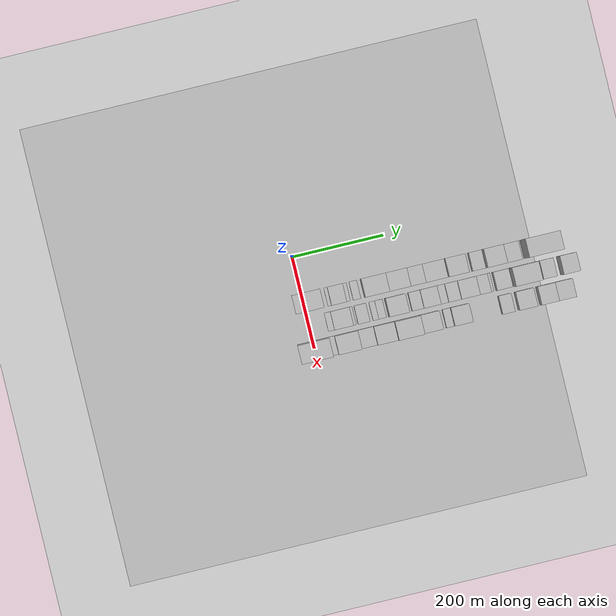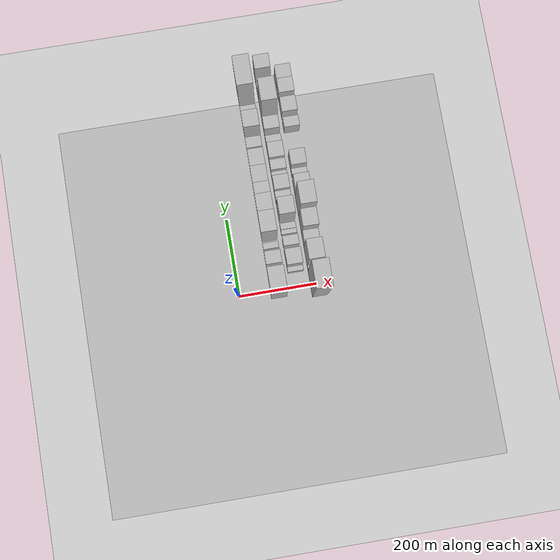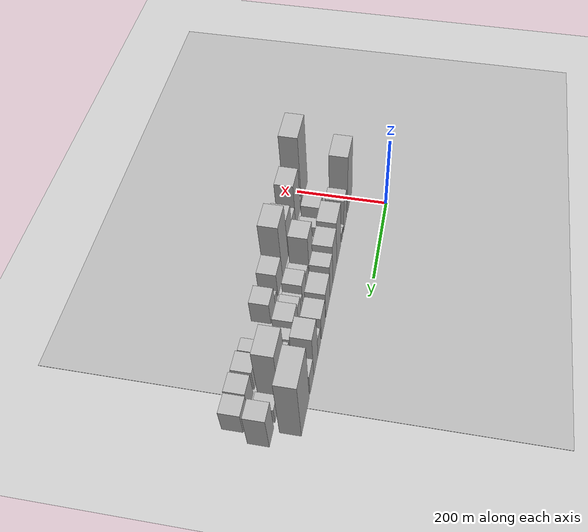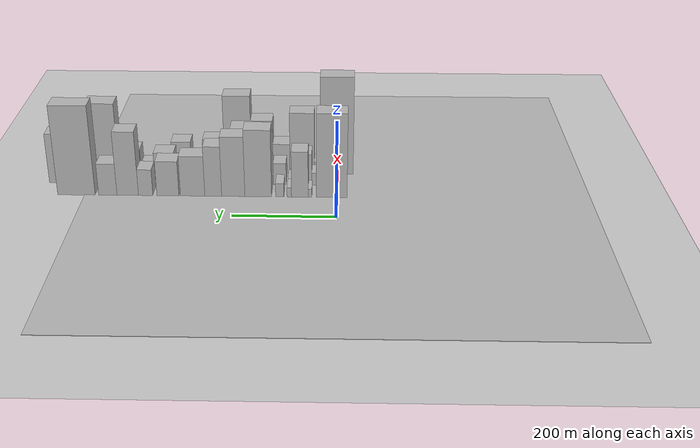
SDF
<sdf version="1.6">
 <world name="default">
  <include><name>ground_plane_1</name><uri>model://HANNAS_ground_plane</uri></include>
  <include>
   <name>ground_plane_2</name>
   <uri>model://HANNAS_ground_plane</uri>
   <pose>100 0 0  0 0 0</pose>
  </include>
  <model name="building_17">
   <static>1</static>
   <pose>100.0000 10.0317 0 0.000000 0.000000 0.000000</pose>
   <link name="link">
    <pose>0 0 90.00 0 0 0</pose>
    <collision name="collision"><geometry><box><size>40.0000 60.5755 180.0000</size></box></geometry></collision>
    <visual name="visual">
     <cast_shadows>0</cast_shadows>
     <geometry><box><size>40.0000 60.5755 180.0000</size></box></geometry>
     <material>
      <script>
       <uri>model://HANNAS_wall/materials/scripts</uri>
       <uri>model://HANNAS_wall/materials/textures</uri>
       <name>vrc/HANNAS_wall</name>
      </script>
     </material>
    </visual>
   </link>
  </model>
  <model name="building_18">
   <static>1</static>
   <pose>100.0000 53.0055 0 0.000000 0.000000 0.000000</pose>
   <link name="link">
    <pose>0 0 9.00 0 0 0</pose>
    <collision name="collision"><geometry><box><size>40.0000 7.3721 18.0000</size></box></geometry></collision>
    <visual name="visual">
     <cast_shadows>0</cast_shadows>
     <geometry><box><size>40.0000 7.3721 18.0000</size></box></geometry>
     <material>
      <script>
       <uri>model://HANNAS_wall/materials/scripts</uri>
       <uri>model://HANNAS_wall/materials/textures</uri>
       <name>vrc/HANNAS_wall</name>
      </script>
     </material>
    </visual>
   </link>
  </model>
  <model name="building_19">
   <static>1</static>
   <pose>100.0000 73.1179 0 0.000000 0.000000 0.000000</pose>
   <link name="link">
    <pose>0 0 49.50 0 0 0</pose>
    <collision name="collision"><geometry><box><size>40.0000 32.8527 99.0000</size></box></geometry></collision>
    <visual name="visual">
     <cast_shadows>0</cast_shadows>
     <geometry><box><size>40.0000 32.8527 99.0000</size></box></geometry>
     <material>
      <script>
       <uri>model://HANNAS_wall/materials/scripts</uri>
       <uri>model://HANNAS_wall/materials/textures</uri>
       <name>vrc/HANNAS_wall</name>
      </script>
     </material>
    </visual>
   </link>
  </model>
  <model name="building_20">
   <static>1</static>
   <pose>100.0000 93.9917 0 0.000000 0.000000 0.000000</pose>
   <link name="link">
    <pose>0 0 10.50 0 0 0</pose>
    <collision name="collision"><geometry><box><size>40.0000 8.8949 21.0000</size></box></geometry></collision>
    <visual name="visual">
     <cast_shadows>0</cast_shadows>
     <geometry><box><size>40.0000 8.8949 21.0000</size></box></geometry>
     <material>
      <script>
       <uri>model://HANNAS_wall/materials/scripts</uri>
       <uri>model://HANNAS_wall/materials/textures</uri>
       <name>vrc/HANNAS_wall</name>
      </script>
     </material>
    </visual>
   </link>
  </model>
  <model name="building_21">
   <static>1</static>
   <pose>100.0000 112.7230 0 0.000000 0.000000 0.000000</pose>
   <link name="link">
    <pose>0 0 15.00 0 0 0</pose>
    <collision name="collision"><geometry><box><size>40.0000 16.5676 30.0000</size></box></geometry></collision>
    <visual name="visual">
     <cast_shadows>0</cast_shadows>
     <geometry><box><size>40.0000 16.5676 30.0000</size></box></geometry>
     <material>
      <script>
       <uri>model://HANNAS_wall/materials/scripts</uri>
       <uri>model://HANNAS_wall/materials/textures</uri>
       <name>vrc/HANNAS_wall</name>
      </script>
     </material>
    </visual>
   </link>
  </model>
  <model name="building_22">
   <static>1</static>
   <pose>100.0000 155.3587 0 0.000000 0.000000 0.000000</pose>
   <link name="link">
    <pose>0 0 72.00 0 0 0</pose>
    <collision name="collision"><geometry><box><size>40.0000 52.7038 144.0000</size></box></geometry></collision>
    <visual name="visual">
     <cast_shadows>0</cast_shadows>
     <geometry><box><size>40.0000 52.7038 144.0000</size></box></geometry>
     <material>
      <script>
       <uri>model://HANNAS_wall/materials/scripts</uri>
       <uri>model://HANNAS_wall/materials/textures</uri>
       <name>vrc/HANNAS_wall</name>
      </script>
     </material>
    </visual>
   </link>
  </model>
  <model name="building_23">
   <static>1</static>
   <pose>100.0000 204.7117 0 0.000000 0.000000 0.000000</pose>
   <link name="link">
    <pose>0 0 64.50 0 0 0</pose>
    <collision name="collision"><geometry><box><size>40.0000 46.0022 129.0000</size></box></geometry></collision>
    <visual name="visual">
     <cast_shadows>0</cast_shadows>
     <geometry><box><size>40.0000 46.0022 129.0000</size></box></geometry>
     <material>
      <script>
       <uri>model://HANNAS_wall/materials/scripts</uri>
       <uri>model://HANNAS_wall/materials/textures</uri>
       <name>vrc/HANNAS_wall</name>
      </script>
     </material>
    </visual>
   </link>
  </model>
  <model name="building_24">
   <static>1</static>
   <pose>100.0000 244.3947 0 0.000000 0.000000 0.000000</pose>
   <link name="link">
    <pose>0 0 54.00 0 0 0</pose>
    <collision name="collision"><geometry><box><size>40.0000 33.3637 108.0000</size></box></geometry></collision>
    <visual name="visual">
     <cast_shadows>0</cast_shadows>
     <geometry><box><size>40.0000 33.3637 108.0000</size></box></geometry>
     <material>
      <script>
       <uri>model://HANNAS_wall/materials/scripts</uri>
       <uri>model://HANNAS_wall/materials/textures</uri>
       <name>vrc/HANNAS_wall</name>
      </script>
     </material>
    </visual>
   </link>
  </model>
  <model name="building_25">
   <static>1</static>
   <pose>100.0000 285.2390 0 0.000000 0.000000 0.000000</pose>
   <link name="link">
    <pose>0 0 43.50 0 0 0</pose>
    <collision name="collision"><geometry><box><size>40.0000 48.3250 87.0000</size></box></geometry></collision>
    <visual name="visual">
     <cast_shadows>0</cast_shadows>
     <geometry><box><size>40.0000 48.3250 87.0000</size></box></geometry>
     <material>
      <script>
       <uri>model://HANNAS_wall/materials/scripts</uri>
       <uri>model://HANNAS_wall/materials/textures</uri>
       <name>vrc/HANNAS_wall</name>
      </script>
     </material>
    </visual>
   </link>
  </model>
  <model name="building_26">
   <static>1</static>
   <pose>100.0000 334.2590 0 0.000000 0.000000 0.000000</pose>
   <link name="link">
    <pose>0 0 37.50 0 0 0</pose>
    <collision name="collision"><geometry><box><size>40.0000 43.7151 75.0000</size></box></geometry></collision>
    <visual name="visual">
     <cast_shadows>0</cast_shadows>
     <geometry><box><size>40.0000 43.7151 75.0000</size></box></geometry>
     <material>
      <script>
       <uri>model://HANNAS_wall/materials/scripts</uri>
       <uri>model://HANNAS_wall/materials/textures</uri>
       <name>vrc/HANNAS_wall</name>
      </script>
     </material>
    </visual>
   </link>
  </model>
  <model name="building_27">
   <static>1</static>
   <pose>100.0000 378.4005 0 0.000000 0.000000 0.000000</pose>
   <link name="link">
    <pose>0 0 28.50 0 0 0</pose>
    <collision name="collision"><geometry><box><size>40.0000 28.5678 57.0000</size></box></geometry></collision>
    <visual name="visual">
     <cast_shadows>0</cast_shadows>
     <geometry><box><size>40.0000 28.5678 57.0000</size></box></geometry>
     <material>
      <script>
       <uri>model://HANNAS_wall/materials/scripts</uri>
       <uri>model://HANNAS_wall/materials/textures</uri>
       <name>vrc/HANNAS_wall</name>
      </script>
     </material>
    </visual>
   </link>
  </model>
  <model name="building_28">
   <static>1</static>
   <pose>100.0000 414.0339 0 0.000000 0.000000 0.000000</pose>
   <link name="link">
    <pose>0 0 69.00 0 0 0</pose>
    <collision name="collision"><geometry><box><size>40.0000 42.6991 138.0000</size></box></geometry></collision>
    <visual name="visual">
     <cast_shadows>0</cast_shadows>
     <geometry><box><size>40.0000 42.6991 138.0000</size></box></geometry>
     <material>
      <script>
       <uri>model://HANNAS_wall/materials/scripts</uri>
       <uri>model://HANNAS_wall/materials/textures</uri>
       <name>vrc/HANNAS_wall</name>
      </script>
     </material>
    </visual>
   </link>
  </model>
  <model name="building_29">
   <static>1</static>
   <pose>100.0000 453.5905 0 0.000000 0.000000 0.000000</pose>
   <link name="link">
    <pose>0 0 34.50 0 0 0</pose>
    <collision name="collision"><geometry><box><size>40.0000 36.4141 69.0000</size></box></geometry></collision>
    <visual name="visual">
     <cast_shadows>0</cast_shadows>
     <geometry><box><size>40.0000 36.4141 69.0000</size></box></geometry>
     <material>
      <script>
       <uri>model://HANNAS_wall/materials/scripts</uri>
       <uri>model://HANNAS_wall/materials/textures</uri>
       <name>vrc/HANNAS_wall</name>
      </script>
     </material>
    </visual>
   </link>
  </model>
  <model name="building_30">
   <static>1</static>
   <pose>100.0000 516.0462 0 0.000000 0.000000 0.000000</pose>
   <link name="link">
    <pose>0 0 96.00 0 0 0</pose>
    <collision name="collision"><geometry><box><size>40.0000 74.4973 192.0000</size></box></geometry></collision>
    <visual name="visual">
     <cast_shadows>0</cast_shadows>
     <geometry><box><size>40.0000 74.4973 192.0000</size></box></geometry>
     <material>
      <script>
       <uri>model://HANNAS_wall/materials/scripts</uri>
       <uri>model://HANNAS_wall/materials/textures</uri>
       <name>vrc/HANNAS_wall</name>
      </script>
     </material>
    </visual>
   </link>
  </model>
  <model name="building_48">
   <static>1</static>
   <pose>152.0000 44.2119 0 0.000000 0.000000 0.000000</pose>
   <link name="link">
    <pose>0 0 13.50 0 0 0</pose>
    <collision name="collision"><geometry><box><size>40.0000 13.3596 27.0000</size></box></geometry></collision>
    <visual name="visual">
     <cast_shadows>0</cast_shadows>
     <geometry><box><size>40.0000 13.3596 27.0000</size></box></geometry>
     <material>
      <script>
       <uri>model://HANNAS_wall/materials/scripts</uri>
       <uri>model://HANNAS_wall/materials/textures</uri>
       <name>vrc/HANNAS_wall</name>
      </script>
     </material>
    </visual>
   </link>
  </model>
  <model name="building_49">
   <static>1</static>
   <pose>152.0000 71.4884 0 0.000000 0.000000 0.000000</pose>
   <link name="link">
    <pose>0 0 34.50 0 0 0</pose>
    <collision name="collision"><geometry><box><size>40.0000 41.1933 69.0000</size></box></geometry></collision>
    <visual name="visual">
     <cast_shadows>0</cast_shadows>
     <geometry><box><size>40.0000 41.1933 69.0000</size></box></geometry>
     <material>
      <script>
       <uri>model://HANNAS_wall/materials/scripts</uri>
       <uri>model://HANNAS_wall/materials/textures</uri>
       <name>vrc/HANNAS_wall</name>
      </script>
     </material>
    </visual>
   </link>
  </model>
  <model name="building_50">
   <static>1</static>
   <pose>152.0000 95.3189 0 0.000000 0.000000 0.000000</pose>
   <link name="link">
    <pose>0 0 7.50 0 0 0</pose>
    <collision name="collision"><geometry><box><size>40.0000 6.4677 15.0000</size></box></geometry></collision>
    <visual name="visual">
     <cast_shadows>0</cast_shadows>
     <geometry><box><size>40.0000 6.4677 15.0000</size></box></geometry>
     <material>
      <script>
       <uri>model://HANNAS_wall/materials/scripts</uri>
       <uri>model://HANNAS_wall/materials/textures</uri>
       <name>vrc/HANNAS_wall</name>
      </script>
     </material>
    </visual>
   </link>
  </model>
  <model name="building_51">
   <static>1</static>
   <pose>152.0000 115.4108 0 0.000000 0.000000 0.000000</pose>
   <link name="link">
    <pose>0 0 24.00 0 0 0</pose>
    <collision name="collision"><geometry><box><size>40.0000 25.7161 48.0000</size></box></geometry></collision>
    <visual name="visual">
     <cast_shadows>0</cast_shadows>
     <geometry><box><size>40.0000 25.7161 48.0000</size></box></geometry>
     <material>
      <script>
       <uri>model://HANNAS_wall/materials/scripts</uri>
       <uri>model://HANNAS_wall/materials/textures</uri>
       <name>vrc/HANNAS_wall</name>
      </script>
     </material>
    </visual>
   </link>
  </model>
  <model name="building_52">
   <static>1</static>
   <pose>152.0000 141.4687 0 0.000000 0.000000 0.000000</pose>
   <link name="link">
    <pose>0 0 13.50 0 0 0</pose>
    <collision name="collision"><geometry><box><size>40.0000 12.3997 27.0000</size></box></geometry></collision>
    <visual name="visual">
     <cast_shadows>0</cast_shadows>
     <geometry><box><size>40.0000 12.3997 27.0000</size></box></geometry>
     <material>
      <script>
       <uri>model://HANNAS_wall/materials/scripts</uri>
       <uri>model://HANNAS_wall/materials/textures</uri>
       <name>vrc/HANNAS_wall</name>
      </script>
     </material>
    </visual>
   </link>
  </model>
  <model name="building_53">
   <static>1</static>
   <pose>152.0000 156.0027 0 0.000000 0.000000 0.000000</pose>
   <link name="link">
    <pose>0 0 15.00 0 0 0</pose>
    <collision name="collision"><geometry><box><size>40.0000 16.6683 30.0000</size></box></geometry></collision>
    <visual name="visual">
     <cast_shadows>0</cast_shadows>
     <geometry><box><size>40.0000 16.6683 30.0000</size></box></geometry>
     <material>
      <script>
       <uri>model://HANNAS_wall/materials/scripts</uri>
       <uri>model://HANNAS_wall/materials/textures</uri>
       <name>vrc/HANNAS_wall</name>
      </script>
     </material>
    </visual>
   </link>
  </model>
  <model name="building_54">
   <static>1</static>
   <pose>152.0000 190.8599 0 0.000000 0.000000 0.000000</pose>
   <link name="link">
    <pose>0 0 61.50 0 0 0</pose>
    <collision name="collision"><geometry><box><size>40.0000 43.0461 123.0000</size></box></geometry></collision>
    <visual name="visual">
     <cast_shadows>0</cast_shadows>
     <geometry><box><size>40.0000 43.0461 123.0000</size></box></geometry>
     <material>
      <script>
       <uri>model://HANNAS_wall/materials/scripts</uri>
       <uri>model://HANNAS_wall/materials/textures</uri>
       <name>vrc/HANNAS_wall</name>
      </script>
     </material>
    </visual>
   </link>
  </model>
  <model name="building_55">
   <static>1</static>
   <pose>152.0000 233.0276 0 0.000000 0.000000 0.000000</pose>
   <link name="link">
    <pose>0 0 22.50 0 0 0</pose>
    <collision name="collision"><geometry><box><size>40.0000 25.2893 45.0000</size></box></geometry></collision>
    <visual name="visual">
     <cast_shadows>0</cast_shadows>
     <geometry><box><size>40.0000 25.2893 45.0000</size></box></geometry>
     <material>
      <script>
       <uri>model://HANNAS_wall/materials/scripts</uri>
       <uri>model://HANNAS_wall/materials/textures</uri>
       <name>vrc/HANNAS_wall</name>
      </script>
     </material>
    </visual>
   </link>
  </model>
  <model name="building_56">
   <static>1</static>
   <pose>152.0000 264.1108 0 0.000000 0.000000 0.000000</pose>
   <link name="link">
    <pose>0 0 31.50 0 0 0</pose>
    <collision name="collision"><geometry><box><size>40.0000 36.8770 63.0000</size></box></geometry></collision>
    <visual name="visual">
     <cast_shadows>0</cast_shadows>
     <geometry><box><size>40.0000 36.8770 63.0000</size></box></geometry>
     <material>
      <script>
       <uri>model://HANNAS_wall/materials/scripts</uri>
       <uri>model://HANNAS_wall/materials/textures</uri>
       <name>vrc/HANNAS_wall</name>
      </script>
     </material>
    </visual>
   </link>
  </model>
  <model name="building_57">
   <static>1</static>
   <pose>152.0000 291.1768 0 0.000000 0.000000 0.000000</pose>
   <link name="link">
    <pose>0 0 16.50 0 0 0</pose>
    <collision name="collision"><geometry><box><size>40.0000 17.2550 33.0000</size></box></geometry></collision>
    <visual name="visual">
     <cast_shadows>0</cast_shadows>
     <geometry><box><size>40.0000 17.2550 33.0000</size></box></geometry>
     <material>
      <script>
       <uri>model://HANNAS_wall/materials/scripts</uri>
       <uri>model://HANNAS_wall/materials/textures</uri>
       <name>vrc/HANNAS_wall</name>
      </script>
     </material>
    </visual>
   </link>
  </model>
  <model name="building_58">
   <static>1</static>
   <pose>152.0000 313.3842 0 0.000000 0.000000 0.000000</pose>
   <link name="link">
    <pose>0 0 25.50 0 0 0</pose>
    <collision name="collision"><geometry><box><size>40.0000 27.1597 51.0000</size></box></geometry></collision>
    <visual name="visual">
     <cast_shadows>0</cast_shadows>
     <geometry><box><size>40.0000 27.1597 51.0000</size></box></geometry>
     <material>
      <script>
       <uri>model://HANNAS_wall/materials/scripts</uri>
       <uri>model://HANNAS_wall/materials/textures</uri>
       <name>vrc/HANNAS_wall</name>
      </script>
     </material>
    </visual>
   </link>
  </model>
  <model name="building_59">
   <static>1</static>
   <pose>152.0000 347.2046 0 0.000000 0.000000 0.000000</pose>
   <link name="link">
    <pose>0 0 34.50 0 0 0</pose>
    <collision name="collision"><geometry><box><size>40.0000 40.4812 69.0000</size></box></geometry></collision>
    <visual name="visual">
     <cast_shadows>0</cast_shadows>
     <geometry><box><size>40.0000 40.4812 69.0000</size></box></geometry>
     <material>
      <script>
       <uri>model://HANNAS_wall/materials/scripts</uri>
       <uri>model://HANNAS_wall/materials/textures</uri>
       <name>vrc/HANNAS_wall</name>
      </script>
     </material>
    </visual>
   </link>
  </model>
  <model name="building_60">
   <static>1</static>
   <pose>152.0000 380.1130 0 0.000000 0.000000 0.000000</pose>
   <link name="link">
    <pose>0 0 22.50 0 0 0</pose>
    <collision name="collision"><geometry><box><size>40.0000 25.3355 45.0000</size></box></geometry></collision>
    <visual name="visual">
     <cast_shadows>0</cast_shadows>
     <geometry><box><size>40.0000 25.3355 45.0000</size></box></geometry>
     <material>
      <script>
       <uri>model://HANNAS_wall/materials/scripts</uri>
       <uri>model://HANNAS_wall/materials/textures</uri>
       <name>vrc/HANNAS_wall</name>
      </script>
     </material>
    </visual>
   </link>
  </model>
  <model name="building_61">
   <static>1</static>
   <pose>152.0000 396.1754 0 0.000000 0.000000 0.000000</pose>
   <link name="link">
    <pose>0 0 7.50 0 0 0</pose>
    <collision name="collision"><geometry><box><size>40.0000 6.7892 15.0000</size></box></geometry></collision>
    <visual name="visual">
     <cast_shadows>0</cast_shadows>
     <geometry><box><size>40.0000 6.7892 15.0000</size></box></geometry>
     <material>
      <script>
       <uri>model://HANNAS_wall/materials/scripts</uri>
       <uri>model://HANNAS_wall/materials/textures</uri>
       <name>vrc/HANNAS_wall</name>
      </script>
     </material>
    </visual>
   </link>
  </model>
  <model name="building_62">
   <static>1</static>
   <pose>152.0000 421.6604 0 0.000000 0.000000 0.000000</pose>
   <link name="link">
    <pose>0 0 30.00 0 0 0</pose>
    <collision name="collision"><geometry><box><size>40.0000 34.1808 60.0000</size></box></geometry></collision>
    <visual name="visual">
     <cast_shadows>0</cast_shadows>
     <geometry><box><size>40.0000 34.1808 60.0000</size></box></geometry>
     <material>
      <script>
       <uri>model://HANNAS_wall/materials/scripts</uri>
       <uri>model://HANNAS_wall/materials/textures</uri>
       <name>vrc/HANNAS_wall</name>
      </script>
     </material>
    </visual>
   </link>
  </model>
  <model name="building_63">
   <static>1</static>
   <pose>152.0000 467.5517 0 0.000000 0.000000 0.000000</pose>
   <link name="link">
    <pose>0 0 87.00 0 0 0</pose>
    <collision name="collision"><geometry><box><size>40.0000 57.6016 174.0000</size></box></geometry></collision>
    <visual name="visual">
     <cast_shadows>0</cast_shadows>
     <geometry><box><size>40.0000 57.6016 174.0000</size></box></geometry>
     <material>
      <script>
       <uri>model://HANNAS_wall/materials/scripts</uri>
       <uri>model://HANNAS_wall/materials/textures</uri>
       <name>vrc/HANNAS_wall</name>
      </script>
     </material>
    </visual>
   </link>
  </model>
  <model name="building_64">
   <static>1</static>
   <pose>152.0000 501.2418 0 0.000000 0.000000 0.000000</pose>
   <link name="link">
    <pose>0 0 10.50 0 0 0</pose>
    <collision name="collision"><geometry><box><size>40.0000 9.7786 21.0000</size></box></geometry></collision>
    <visual name="visual">
     <cast_shadows>0</cast_shadows>
     <geometry><box><size>40.0000 9.7786 21.0000</size></box></geometry>
     <material>
      <script>
       <uri>model://HANNAS_wall/materials/scripts</uri>
       <uri>model://HANNAS_wall/materials/textures</uri>
       <name>vrc/HANNAS_wall</name>
      </script>
     </material>
    </visual>
   </link>
  </model>
  <model name="building_65">
   <static>1</static>
   <pose>152.0000 521.1083 0 0.000000 0.000000 0.000000</pose>
   <link name="link">
    <pose>0 0 25.50 0 0 0</pose>
    <collision name="collision"><geometry><box><size>40.0000 29.9545 51.0000</size></box></geometry></collision>
    <visual name="visual">
     <cast_shadows>0</cast_shadows>
     <geometry><box><size>40.0000 29.9545 51.0000</size></box></geometry>
     <material>
      <script>
       <uri>model://HANNAS_wall/materials/scripts</uri>
       <uri>model://HANNAS_wall/materials/textures</uri>
       <name>vrc/HANNAS_wall</name>
      </script>
     </material>
    </visual>
   </link>
  </model>
  <model name="building_66">
   <static>1</static>
   <pose>152.0000 564.1155 0 0.000000 0.000000 0.000000</pose>
   <link name="link">
    <pose>0 0 54.00 0 0 0</pose>
    <collision name="collision"><geometry><box><size>40.0000 36.0598 108.0000</size></box></geometry></collision>
    <visual name="visual">
     <cast_shadows>0</cast_shadows>
     <geometry><box><size>40.0000 36.0598 108.0000</size></box></geometry>
     <material>
      <script>
       <uri>model://HANNAS_wall/materials/scripts</uri>
       <uri>model://HANNAS_wall/materials/textures</uri>
       <name>vrc/HANNAS_wall</name>
      </script>
     </material>
    </visual>
   </link>
  </model>
  <model name="building_81">
   <static>1</static>
   <pose>204.0000 1.1077 0 0.000000 0.000000 0.000000</pose>
   <link name="link">
    <pose>0 0 106.50 0 0 0</pose>
    <collision name="collision"><geometry><box><size>40.0000 67.6982 213.0000</size></box></geometry></collision>
    <visual name="visual">
     <cast_shadows>0</cast_shadows>
     <geometry><box><size>40.0000 67.6982 213.0000</size></box></geometry>
     <material>
      <script>
       <uri>model://HANNAS_wall/materials/scripts</uri>
       <uri>model://HANNAS_wall/materials/textures</uri>
       <name>vrc/HANNAS_wall</name>
      </script>
     </material>
    </visual>
   </link>
  </model>
  <model name="building_82">
   <static>1</static>
   <pose>204.0000 41.0829 0 0.000000 0.000000 0.000000</pose>
   <link name="link">
    <pose>0 0 13.50 0 0 0</pose>
    <collision name="collision"><geometry><box><size>40.0000 12.2522 27.0000</size></box></geometry></collision>
    <visual name="visual">
     <cast_shadows>0</cast_shadows>
     <geometry><box><size>40.0000 12.2522 27.0000</size></box></geometry>
     <material>
      <script>
       <uri>model://HANNAS_wall/materials/scripts</uri>
       <uri>model://HANNAS_wall/materials/textures</uri>
       <name>vrc/HANNAS_wall</name>
      </script>
     </material>
    </visual>
   </link>
  </model>
  <model name="building_83">
   <static>1</static>
   <pose>204.0000 72.1895 0 0.000000 0.000000 0.000000</pose>
   <link name="link">
    <pose>0 0 67.50 0 0 0</pose>
    <collision name="collision"><geometry><box><size>40.0000 49.9611 135.0000</size></box></geometry></collision>
    <visual name="visual">
     <cast_shadows>0</cast_shadows>
     <geometry><box><size>40.0000 49.9611 135.0000</size></box></geometry>
     <material>
      <script>
       <uri>model://HANNAS_wall/materials/scripts</uri>
       <uri>model://HANNAS_wall/materials/textures</uri>
       <name>vrc/HANNAS_wall</name>
      </script>
     </material>
    </visual>
   </link>
  </model>
  <model name="building_84">
   <static>1</static>
   <pose>204.0000 114.3619 0 0.000000 0.000000 0.000000</pose>
   <link name="link">
    <pose>0 0 33.00 0 0 0</pose>
    <collision name="collision"><geometry><box><size>40.0000 34.3838 66.0000</size></box></geometry></collision>
    <visual name="visual">
     <cast_shadows>0</cast_shadows>
     <geometry><box><size>40.0000 34.3838 66.0000</size></box></geometry>
     <material>
      <script>
       <uri>model://HANNAS_wall/materials/scripts</uri>
       <uri>model://HANNAS_wall/materials/textures</uri>
       <name>vrc/HANNAS_wall</name>
      </script>
     </material>
    </visual>
   </link>
  </model>
  <model name="building_85">
   <static>1</static>
   <pose>204.0000 153.7274 0 0.000000 0.000000 0.000000</pose>
   <link name="link">
    <pose>0 0 58.50 0 0 0</pose>
    <collision name="collision"><geometry><box><size>40.0000 44.3472 117.0000</size></box></geometry></collision>
    <visual name="visual">
     <cast_shadows>0</cast_shadows>
     <geometry><box><size>40.0000 44.3472 117.0000</size></box></geometry>
     <material>
      <script>
       <uri>model://HANNAS_wall/materials/scripts</uri>
       <uri>model://HANNAS_wall/materials/textures</uri>
       <name>vrc/HANNAS_wall</name>
      </script>
     </material>
    </visual>
   </link>
  </model>
  <model name="building_86">
   <static>1</static>
   <pose>204.0000 203.4536 0 0.000000 0.000000 0.000000</pose>
   <link name="link">
    <pose>0 0 85.50 0 0 0</pose>
    <collision name="collision"><geometry><box><size>40.0000 55.1051 171.0000</size></box></geometry></collision>
    <visual name="visual">
     <cast_shadows>0</cast_shadows>
     <geometry><box><size>40.0000 55.1051 171.0000</size></box></geometry>
     <material>
      <script>
       <uri>model://HANNAS_wall/materials/scripts</uri>
       <uri>model://HANNAS_wall/materials/textures</uri>
       <name>vrc/HANNAS_wall</name>
      </script>
     </material>
    </visual>
   </link>
  </model>
  <model name="building_87">
   <static>1</static>
   <pose>204.0000 252.9398 0 0.000000 0.000000 0.000000</pose>
   <link name="link">
    <pose>0 0 37.50 0 0 0</pose>
    <collision name="collision"><geometry><box><size>40.0000 43.8674 75.0000</size></box></geometry></collision>
    <visual name="visual">
     <cast_shadows>0</cast_shadows>
     <geometry><box><size>40.0000 43.8674 75.0000</size></box></geometry>
     <material>
      <script>
       <uri>model://HANNAS_wall/materials/scripts</uri>
       <uri>model://HANNAS_wall/materials/textures</uri>
       <name>vrc/HANNAS_wall</name>
      </script>
     </material>
    </visual>
   </link>
  </model>
  <model name="building_88">
   <static>1</static>
   <pose>204.0000 291.3313 0 0.000000 0.000000 0.000000</pose>
   <link name="link">
    <pose>0 0 16.50 0 0 0</pose>
    <collision name="collision"><geometry><box><size>40.0000 16.9156 33.0000</size></box></geometry></collision>
    <visual name="visual">
     <cast_shadows>0</cast_shadows>
     <geometry><box><size>40.0000 16.9156 33.0000</size></box></geometry>
     <material>
      <script>
       <uri>model://HANNAS_wall/materials/scripts</uri>
       <uri>model://HANNAS_wall/materials/textures</uri>
       <name>vrc/HANNAS_wall</name>
      </script>
     </material>
    </visual>
   </link>
  </model>
  <model name="building_89">
   <static>1</static>
   <pose>204.0000 319.6767 0 0.000000 0.000000 0.000000</pose>
   <link name="link">
    <pose>0 0 34.50 0 0 0</pose>
    <collision name="collision"><geometry><box><size>40.0000 39.7751 69.0000</size></box></geometry></collision>
    <visual name="visual">
     <cast_shadows>0</cast_shadows>
     <geometry><box><size>40.0000 39.7751 69.0000</size></box></geometry>
     <material>
      <script>
       <uri>model://HANNAS_wall/materials/scripts</uri>
       <uri>model://HANNAS_wall/materials/textures</uri>
       <name>vrc/HANNAS_wall</name>
      </script>
     </material>
    </visual>
   </link>
  </model>
  <model name="building_90">
   <static>1</static>
   <pose>204.0000 418.1531 0 0.000000 0.000000 0.000000</pose>
   <link name="link">
    <pose>0 0 25.50 0 0 0</pose>
    <collision name="collision"><geometry><box><size>40.0000 27.0593 51.0000</size></box></geometry></collision>
    <visual name="visual">
     <cast_shadows>0</cast_shadows>
     <geometry><box><size>40.0000 27.0593 51.0000</size></box></geometry>
     <material>
      <script>
       <uri>model://HANNAS_wall/materials/scripts</uri>
       <uri>model://HANNAS_wall/materials/textures</uri>
       <name>vrc/HANNAS_wall</name>
      </script>
     </material>
    </visual>
   </link>
  </model>
  <model name="building_91">
   <static>1</static>
   <pose>204.0000 460.3479 0 0.000000 0.000000 0.000000</pose>
   <link name="link">
    <pose>0 0 33.00 0 0 0</pose>
    <collision name="collision"><geometry><box><size>40.0000 39.3302 66.0000</size></box></geometry></collision>
    <visual name="visual">
     <cast_shadows>0</cast_shadows>
     <geometry><box><size>40.0000 39.3302 66.0000</size></box></geometry>
     <material>
      <script>
       <uri>model://HANNAS_wall/materials/scripts</uri>
       <uri>model://HANNAS_wall/materials/textures</uri>
       <name>vrc/HANNAS_wall</name>
      </script>
     </material>
    </visual>
   </link>
  </model>
  <model name="building_92">
   <static>1</static>
   <pose>204.0000 506.9955 0 0.000000 0.000000 0.000000</pose>
   <link name="link">
    <pose>0 0 37.50 0 0 0</pose>
    <collision name="collision"><geometry><box><size>40.0000 37.9651 75.0000</size></box></geometry></collision>
    <visual name="visual">
     <cast_shadows>0</cast_shadows>
     <geometry><box><size>40.0000 37.9651 75.0000</size></box></geometry>
     <material>
      <script>
       <uri>model://HANNAS_wall/materials/scripts</uri>
       <uri>model://HANNAS_wall/materials/textures</uri>
       <name>vrc/HANNAS_wall</name>
      </script>
     </material>
    </visual>
   </link>
  </model>
  <model name="building_93">
   <static>1</static>
   <pose>204.0000 544.9700 0 0.000000 0.000000 0.000000</pose>
   <link name="link">
    <pose>0 0 34.50 0 0 0</pose>
    <collision name="collision"><geometry><box><size>40.0000 37.9838 69.0000</size></box></geometry></collision>
    <visual name="visual">
     <cast_shadows>0</cast_shadows>
     <geometry><box><size>40.0000 37.9838 69.0000</size></box></geometry>
     <material>
      <script>
       <uri>model://HANNAS_wall/materials/scripts</uri>
       <uri>model://HANNAS_wall/materials/textures</uri>
       <name>vrc/HANNAS_wall</name>
      </script>
     </material>
    </visual>
   </link>
  </model>
 </world>
</sdf>
